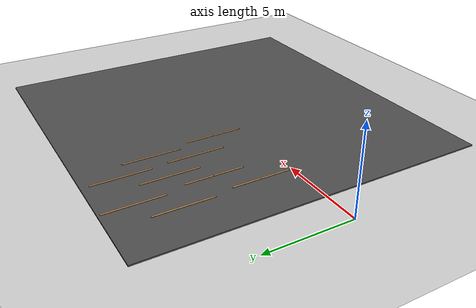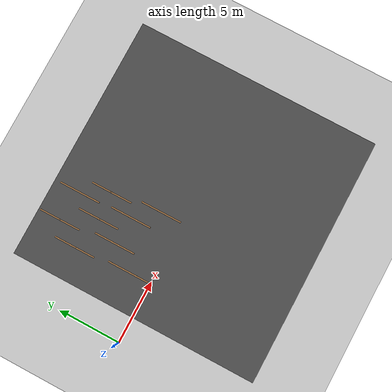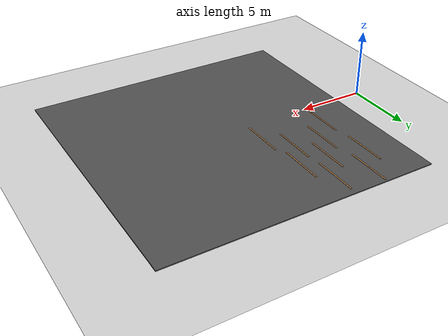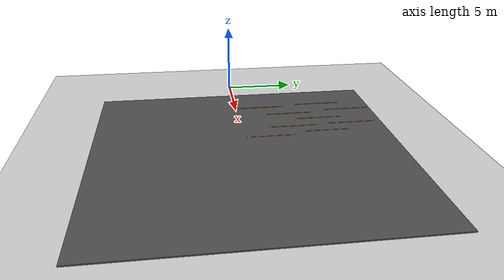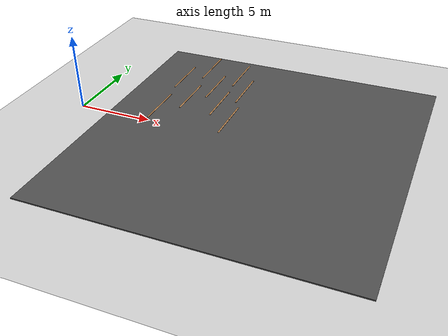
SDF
<sdf version="1.7">
 <world name="default">
  <model name="ground_plane">
   <static>1</static>
   <link name="link">
    <collision name="collision">
     <geometry><plane><normal>0 0 1</normal><size>100 100</size></plane></geometry>
     <surface><friction><ode><mu>100</mu><mu2>50</mu2></ode></friction></surface>
    </collision>
    <visual name="visual">
     <cast_shadows>0</cast_shadows>
     <geometry><plane><normal>0 0 1</normal><size>100 100</size></plane></geometry>
     <material>
      <script><uri>file://media/materials/scripts/gazebo.material</uri><name>Gazebo/Grey</name></script>
     </material>
    </visual>
   </link>
  </model>
  <model name="asphalt_plane">
   <static>1</static>
   <link name="link">
    <collision name="collision"><geometry><box><size>20 20 0.1</size></box></geometry></collision>
    <visual name="visual">
     <cast_shadows>0</cast_shadows>
     <geometry><box><size>20 20 0.1</size></box></geometry>
     <material>
      <script>
       <uri>model://asphalt_plane/materials/scripts</uri>
       <uri>model://asphalt_plane/materials/textures</uri>
       <name>vrc/asphalt</name>
      </script>
     </material>
    </visual>
   </link>
   <pose>12.0553 0.030976 0 0 -0 0</pose>
  </model>
  <model name="wooden_board4_0">
   <link name="base">
    <pose>-0 -0 0.00523 0 -0 0</pose>
    <inertial>
     <mass>0.2765</mass>
     <inertia>
      <ixx>0.0025148</ixx>
      <ixy>0</ixy>
      <ixz>0</ixz>
      <iyy>0.00024037</iyy>
      <iyz>0</iyz>
      <izz>0.00275013</izz>
     </inertia>
    </inertial>
    <visual name="visual">
     <geometry><box><size>0.1016 3.3302 0.02046</size></box></geometry>
     <material>
      <script><uri>file://media/materials/scripts/gazebo.material</uri><name>Gazebo/Wood</name></script>
      <shader type="pixel"><normal_map>__default__</normal_map></shader>
      <ambient>1 1 1 1</ambient>
      <diffuse>1 1 1 1</diffuse>
      <specular>0.2 0.2 0.2 1</specular>
      <emissive>0 0 0 1</emissive>
     </material>
    </visual>
    <visual name="tee_nut_1">
     <pose>0 -0.116 0 0 -0 0</pose>
     <geometry><cylinder><radius>0.00635</radius><length>0.020565</length></cylinder></geometry>
     <material>
      <script><uri>file://media/materials/scripts/gazebo.material</uri><name>Gazebo/Grey</name></script>
      <shader type="pixel"><normal_map>__default__</normal_map></shader>
      <ambient>0.3 0.3 0.3 1</ambient>
      <diffuse>0.7 0.7 0.7 1</diffuse>
      <specular>0.01 0.01 0.01 1</specular>
      <emissive>0 0 0 1</emissive>
     </material>
    </visual>
    <visual name="tee_nut_3">
     <pose>0 0.038 0 0 -0 0</pose>
     <geometry><cylinder><radius>0.00635</radius><length>0.020565</length></cylinder></geometry>
     <material>
      <script><uri>file://media/materials/scripts/gazebo.material</uri><name>Gazebo/Grey</name></script>
      <shader type="pixel"><normal_map>__default__</normal_map></shader>
      <ambient>0.3 0.3 0.3 1</ambient>
      <diffuse>0.7 0.7 0.7 1</diffuse>
      <specular>0.01 0.01 0.01 1</specular>
      <emissive>0 0 0 1</emissive>
     </material>
    </visual>
    <visual name="tee_nut_2">
     <pose>0 -0.038 0 0 -0 0</pose>
     <geometry><cylinder><radius>0.00635</radius><length>0.020565</length></cylinder></geometry>
     <material>
      <script><uri>file://media/materials/scripts/gazebo.material</uri><name>Gazebo/Grey</name></script>
      <shader type="pixel"><normal_map>__default__</normal_map></shader>
      <ambient>0.3 0.3 0.3 1</ambient>
      <diffuse>0.7 0.7 0.7 1</diffuse>
      <specular>0.01 0.01 0.01 1</specular>
      <emissive>0 0 0 1</emissive>
     </material>
    </visual>
    <visual name="tee_nut_4">
     <pose>0 0.116 0 0 -0 0</pose>
     <geometry><cylinder><radius>0.00635</radius><length>0.020565</length></cylinder></geometry>
     <material>
      <script><uri>file://media/materials/scripts/gazebo.material</uri><name>Gazebo/Grey</name></script>
      <shader type="pixel"><normal_map>__default__</normal_map></shader>
      <ambient>0.3 0.3 0.3 1</ambient>
      <diffuse>0.7 0.7 0.7 1</diffuse>
      <specular>0.01 0.01 0.01 1</specular>
      <emissive>0 0 0 1</emissive>
     </material>
    </visual>
    <collision name="collision">
     <geometry><box><size>0.1016 0.3302 0.04046</size></box></geometry>
     <surface>
      <friction>
       <ode><mu>1</mu><mu2>1</mu2><fdir1>0 0 0</fdir1><slip1>0</slip1><slip2>0</slip2></ode>
       <torsional>
        <coefficient>1</coefficient>
        <patch_radius>0</patch_radius>
        <surface_radius>0.01</surface_radius>
        <use_patch_radius>0</use_patch_radius>
        <ode><slip>0</slip></ode>
       </torsional>
      </friction>
      <bounce><restitution_coefficient>0</restitution_coefficient><threshold>1e+06</threshold></bounce>
      <contact>
       <collide_without_contact>0</collide_without_contact>
       <collide_without_contact_bitmask>1</collide_without_contact_bitmask>
       <collide_bitmask>1</collide_bitmask>
       <ode>
        <soft_cfm>0</soft_cfm>
        <soft_erp>0.2</soft_erp>
        <kp>100000</kp>
        <kd>100</kd>
        <max_vel>100</max_vel>
        <min_depth>0.001</min_depth>
       </ode>
       <bullet>
        <split_impulse>1</split_impulse>
        <split_impulse_penetration_threshold>-0.01</split_impulse_penetration_threshold>
        <soft_cfm>0</soft_cfm>
        <soft_erp>0.2</soft_erp>
        <kp>100000</kp>
        <kd>100</kd>
       </bullet>
      </contact>
     </surface>
    </collision>
   </link>
   <static>0</static>
   <pose>4.83829 1.88469 0.063993 0 -0 2.5e-05</pose>
  </model>
  <model name="wooden_board4_2">
   <link name="base">
    <pose>-0 -0 0.00523 0 -0 0</pose>
    <inertial>
     <mass>0.2765</mass>
     <inertia>
      <ixx>0.0025148</ixx>
      <ixy>0</ixy>
      <ixz>0</ixz>
      <iyy>0.00024037</iyy>
      <iyz>0</iyz>
      <izz>0.00275013</izz>
     </inertia>
    </inertial>
    <visual name="visual">
     <geometry><box><size>0.1016 3.3302 0.02046</size></box></geometry>
     <material>
      <script><uri>file://media/materials/scripts/gazebo.material</uri><name>Gazebo/Wood</name></script>
      <shader type="pixel"><normal_map>__default__</normal_map></shader>
      <ambient>1 1 1 1</ambient>
      <diffuse>1 1 1 1</diffuse>
      <specular>0.2 0.2 0.2 1</specular>
      <emissive>0 0 0 1</emissive>
     </material>
    </visual>
    <visual name="tee_nut_1">
     <pose>0 -0.116 0 0 -0 0</pose>
     <geometry><cylinder><radius>0.00635</radius><length>0.020565</length></cylinder></geometry>
     <material>
      <script><uri>file://media/materials/scripts/gazebo.material</uri><name>Gazebo/Grey</name></script>
      <shader type="pixel"><normal_map>__default__</normal_map></shader>
      <ambient>0.3 0.3 0.3 1</ambient>
      <diffuse>0.7 0.7 0.7 1</diffuse>
      <specular>0.01 0.01 0.01 1</specular>
      <emissive>0 0 0 1</emissive>
     </material>
    </visual>
    <visual name="tee_nut_3">
     <pose>0 0.038 0 0 -0 0</pose>
     <geometry><cylinder><radius>0.00635</radius><length>0.020565</length></cylinder></geometry>
     <material>
      <script><uri>file://media/materials/scripts/gazebo.material</uri><name>Gazebo/Grey</name></script>
      <shader type="pixel"><normal_map>__default__</normal_map></shader>
      <ambient>0.3 0.3 0.3 1</ambient>
      <diffuse>0.7 0.7 0.7 1</diffuse>
      <specular>0.01 0.01 0.01 1</specular>
      <emissive>0 0 0 1</emissive>
     </material>
    </visual>
    <visual name="tee_nut_2">
     <pose>0 -0.038 0 0 -0 0</pose>
     <geometry><cylinder><radius>0.00635</radius><length>0.020565</length></cylinder></geometry>
     <material>
      <script><uri>file://media/materials/scripts/gazebo.material</uri><name>Gazebo/Grey</name></script>
      <shader type="pixel"><normal_map>__default__</normal_map></shader>
      <ambient>0.3 0.3 0.3 1</ambient>
      <diffuse>0.7 0.7 0.7 1</diffuse>
      <specular>0.01 0.01 0.01 1</specular>
      <emissive>0 0 0 1</emissive>
     </material>
    </visual>
    <visual name="tee_nut_4">
     <pose>0 0.116 0 0 -0 0</pose>
     <geometry><cylinder><radius>0.00635</radius><length>0.020565</length></cylinder></geometry>
     <material>
      <script><uri>file://media/materials/scripts/gazebo.material</uri><name>Gazebo/Grey</name></script>
      <shader type="pixel"><normal_map>__default__</normal_map></shader>
      <ambient>0.3 0.3 0.3 1</ambient>
      <diffuse>0.7 0.7 0.7 1</diffuse>
      <specular>0.01 0.01 0.01 1</specular>
      <emissive>0 0 0 1</emissive>
     </material>
    </visual>
    <collision name="collision">
     <geometry><box><size>0.1016 0.3302 0.04046</size></box></geometry>
     <surface>
      <friction>
       <ode><mu>1</mu><mu2>1</mu2><fdir1>0 0 0</fdir1><slip1>0</slip1><slip2>0</slip2></ode>
       <torsional>
        <coefficient>1</coefficient>
        <patch_radius>0</patch_radius>
        <surface_radius>0.01</surface_radius>
        <use_patch_radius>0</use_patch_radius>
        <ode><slip>0</slip></ode>
       </torsional>
      </friction>
      <bounce><restitution_coefficient>0</restitution_coefficient><threshold>1e+06</threshold></bounce>
      <contact>
       <collide_without_contact>0</collide_without_contact>
       <collide_without_contact_bitmask>1</collide_without_contact_bitmask>
       <collide_bitmask>1</collide_bitmask>
       <ode>
        <soft_cfm>0</soft_cfm>
        <soft_erp>0.2</soft_erp>
        <kp>100000</kp>
        <kd>100</kd>
        <max_vel>100</max_vel>
        <min_depth>0.001</min_depth>
       </ode>
       <bullet>
        <split_impulse>1</split_impulse>
        <split_impulse_penetration_threshold>-0.01</split_impulse_penetration_threshold>
        <soft_cfm>0</soft_cfm>
        <soft_erp>0.2</soft_erp>
        <kp>100000</kp>
        <kd>100</kd>
       </bullet>
      </contact>
     </surface>
    </collision>
   </link>
   <static>0</static>
   <pose>4.57081 6.26673 0.063993 0 -0 2.5e-05</pose>
  </model>
  <model name="wooden_board4_3">
   <link name="base">
    <pose>-0 -0 0.00523 0 -0 0</pose>
    <inertial>
     <mass>0.2765</mass>
     <inertia>
      <ixx>0.0025148</ixx>
      <ixy>0</ixy>
      <ixz>0</ixz>
      <iyy>0.00024037</iyy>
      <iyz>0</iyz>
      <izz>0.00275013</izz>
     </inertia>
    </inertial>
    <visual name="visual">
     <geometry><box><size>0.1016 3.3302 0.02046</size></box></geometry>
     <material>
      <script><uri>file://media/materials/scripts/gazebo.material</uri><name>Gazebo/Wood</name></script>
      <shader type="pixel"><normal_map>__default__</normal_map></shader>
      <ambient>1 1 1 1</ambient>
      <diffuse>1 1 1 1</diffuse>
      <specular>0.2 0.2 0.2 1</specular>
      <emissive>0 0 0 1</emissive>
     </material>
    </visual>
    <visual name="tee_nut_1">
     <pose>0 -0.116 0 0 -0 0</pose>
     <geometry><cylinder><radius>0.00635</radius><length>0.020565</length></cylinder></geometry>
     <material>
      <script><uri>file://media/materials/scripts/gazebo.material</uri><name>Gazebo/Grey</name></script>
      <shader type="pixel"><normal_map>__default__</normal_map></shader>
      <ambient>0.3 0.3 0.3 1</ambient>
      <diffuse>0.7 0.7 0.7 1</diffuse>
      <specular>0.01 0.01 0.01 1</specular>
      <emissive>0 0 0 1</emissive>
     </material>
    </visual>
    <visual name="tee_nut_3">
     <pose>0 0.038 0 0 -0 0</pose>
     <geometry><cylinder><radius>0.00635</radius><length>0.020565</length></cylinder></geometry>
     <material>
      <script><uri>file://media/materials/scripts/gazebo.material</uri><name>Gazebo/Grey</name></script>
      <shader type="pixel"><normal_map>__default__</normal_map></shader>
      <ambient>0.3 0.3 0.3 1</ambient>
      <diffuse>0.7 0.7 0.7 1</diffuse>
      <specular>0.01 0.01 0.01 1</specular>
      <emissive>0 0 0 1</emissive>
     </material>
    </visual>
    <visual name="tee_nut_2">
     <pose>0 -0.038 0 0 -0 0</pose>
     <geometry><cylinder><radius>0.00635</radius><length>0.020565</length></cylinder></geometry>
     <material>
      <script><uri>file://media/materials/scripts/gazebo.material</uri><name>Gazebo/Grey</name></script>
      <shader type="pixel"><normal_map>__default__</normal_map></shader>
      <ambient>0.3 0.3 0.3 1</ambient>
      <diffuse>0.7 0.7 0.7 1</diffuse>
      <specular>0.01 0.01 0.01 1</specular>
      <emissive>0 0 0 1</emissive>
     </material>
    </visual>
    <visual name="tee_nut_4">
     <pose>0 0.116 0 0 -0 0</pose>
     <geometry><cylinder><radius>0.00635</radius><length>0.020565</length></cylinder></geometry>
     <material>
      <script><uri>file://media/materials/scripts/gazebo.material</uri><name>Gazebo/Grey</name></script>
      <shader type="pixel"><normal_map>__default__</normal_map></shader>
      <ambient>0.3 0.3 0.3 1</ambient>
      <diffuse>0.7 0.7 0.7 1</diffuse>
      <specular>0.01 0.01 0.01 1</specular>
      <emissive>0 0 0 1</emissive>
     </material>
    </visual>
    <collision name="collision">
     <geometry><box><size>0.1016 0.3302 0.04046</size></box></geometry>
     <surface>
      <friction>
       <ode><mu>1</mu><mu2>1</mu2><fdir1>0 0 0</fdir1><slip1>0</slip1><slip2>0</slip2></ode>
       <torsional>
        <coefficient>1</coefficient>
        <patch_radius>0</patch_radius>
        <surface_radius>0.01</surface_radius>
        <use_patch_radius>0</use_patch_radius>
        <ode><slip>0</slip></ode>
       </torsional>
      </friction>
      <bounce><restitution_coefficient>0</restitution_coefficient><threshold>1e+06</threshold></bounce>
      <contact>
       <collide_without_contact>0</collide_without_contact>
       <collide_without_contact_bitmask>1</collide_without_contact_bitmask>
       <collide_bitmask>1</collide_bitmask>
       <ode>
        <soft_cfm>0</soft_cfm>
        <soft_erp>0.2</soft_erp>
        <kp>100000</kp>
        <kd>100</kd>
        <max_vel>100</max_vel>
        <min_depth>0.001</min_depth>
       </ode>
       <bullet>
        <split_impulse>1</split_impulse>
        <split_impulse_penetration_threshold>-0.01</split_impulse_penetration_threshold>
        <soft_cfm>0</soft_cfm>
        <soft_erp>0.2</soft_erp>
        <kp>100000</kp>
        <kd>100</kd>
       </bullet>
      </contact>
     </surface>
    </collision>
   </link>
   <static>0</static>
   <pose>6.21764 3.78263 0.063993 0 -0 2.5e-05</pose>
  </model>
  <model name="wooden_board4_7">
   <link name="base">
    <pose>-0 -0 0.00523 0 -0 0</pose>
    <inertial>
     <mass>0.2765</mass>
     <inertia>
      <ixx>0.0025148</ixx>
      <ixy>0</ixy>
      <ixz>0</ixz>
      <iyy>0.00024037</iyy>
      <iyz>0</iyz>
      <izz>0.00275013</izz>
     </inertia>
    </inertial>
    <visual name="visual">
     <geometry><box><size>0.1016 3.3302 0.02046</size></box></geometry>
     <material>
      <script><uri>file://media/materials/scripts/gazebo.material</uri><name>Gazebo/Wood</name></script>
      <shader type="pixel"><normal_map>__default__</normal_map></shader>
      <ambient>1 1 1 1</ambient>
      <diffuse>1 1 1 1</diffuse>
      <specular>0.2 0.2 0.2 1</specular>
      <emissive>0 0 0 1</emissive>
     </material>
    </visual>
    <visual name="tee_nut_1">
     <pose>0 -0.116 0 0 -0 0</pose>
     <geometry><cylinder><radius>0.00635</radius><length>0.020565</length></cylinder></geometry>
     <material>
      <script><uri>file://media/materials/scripts/gazebo.material</uri><name>Gazebo/Grey</name></script>
      <shader type="pixel"><normal_map>__default__</normal_map></shader>
      <ambient>0.3 0.3 0.3 1</ambient>
      <diffuse>0.7 0.7 0.7 1</diffuse>
      <specular>0.01 0.01 0.01 1</specular>
      <emissive>0 0 0 1</emissive>
     </material>
    </visual>
    <visual name="tee_nut_3">
     <pose>0 0.038 0 0 -0 0</pose>
     <geometry><cylinder><radius>0.00635</radius><length>0.020565</length></cylinder></geometry>
     <material>
      <script><uri>file://media/materials/scripts/gazebo.material</uri><name>Gazebo/Grey</name></script>
      <shader type="pixel"><normal_map>__default__</normal_map></shader>
      <ambient>0.3 0.3 0.3 1</ambient>
      <diffuse>0.7 0.7 0.7 1</diffuse>
      <specular>0.01 0.01 0.01 1</specular>
      <emissive>0 0 0 1</emissive>
     </material>
    </visual>
    <visual name="tee_nut_2">
     <pose>0 -0.038 0 0 -0 0</pose>
     <geometry><cylinder><radius>0.00635</radius><length>0.020565</length></cylinder></geometry>
     <material>
      <script><uri>file://media/materials/scripts/gazebo.material</uri><name>Gazebo/Grey</name></script>
      <shader type="pixel"><normal_map>__default__</normal_map></shader>
      <ambient>0.3 0.3 0.3 1</ambient>
      <diffuse>0.7 0.7 0.7 1</diffuse>
      <specular>0.01 0.01 0.01 1</specular>
      <emissive>0 0 0 1</emissive>
     </material>
    </visual>
    <visual name="tee_nut_4">
     <pose>0 0.116 0 0 -0 0</pose>
     <geometry><cylinder><radius>0.00635</radius><length>0.020565</length></cylinder></geometry>
     <material>
      <script><uri>file://media/materials/scripts/gazebo.material</uri><name>Gazebo/Grey</name></script>
      <shader type="pixel"><normal_map>__default__</normal_map></shader>
      <ambient>0.3 0.3 0.3 1</ambient>
      <diffuse>0.7 0.7 0.7 1</diffuse>
      <specular>0.01 0.01 0.01 1</specular>
      <emissive>0 0 0 1</emissive>
     </material>
    </visual>
    <collision name="collision">
     <geometry><box><size>0.1016 0.3302 0.04046</size></box></geometry>
     <surface>
      <friction>
       <ode><mu>1</mu><mu2>1</mu2><fdir1>0 0 0</fdir1><slip1>0</slip1><slip2>0</slip2></ode>
       <torsional>
        <coefficient>1</coefficient>
        <patch_radius>0</patch_radius>
        <surface_radius>0.01</surface_radius>
        <use_patch_radius>0</use_patch_radius>
        <ode><slip>0</slip></ode>
       </torsional>
      </friction>
      <bounce><restitution_coefficient>0</restitution_coefficient><threshold>1e+06</threshold></bounce>
      <contact>
       <collide_without_contact>0</collide_without_contact>
       <collide_without_contact_bitmask>1</collide_without_contact_bitmask>
       <collide_bitmask>1</collide_bitmask>
       <ode>
        <soft_cfm>0</soft_cfm>
        <soft_erp>0.2</soft_erp>
        <kp>100000</kp>
        <kd>100</kd>
        <max_vel>100</max_vel>
        <min_depth>0.001</min_depth>
       </ode>
       <bullet>
        <split_impulse>1</split_impulse>
        <split_impulse_penetration_threshold>-0.01</split_impulse_penetration_threshold>
        <soft_cfm>0</soft_cfm>
        <soft_erp>0.2</soft_erp>
        <kp>100000</kp>
        <kd>100</kd>
       </bullet>
      </contact>
     </surface>
    </collision>
   </link>
   <static>0</static>
   <pose>7.26014 5.72105 0.063993 0 -0 2.5e-05</pose>
  </model>
  <model name="wooden_board4_9">
   <link name="base">
    <pose>-0 -0 0.00523 0 -0 0</pose>
    <inertial>
     <mass>0.2765</mass>
     <inertia>
      <ixx>0.0025148</ixx>
      <ixy>0</ixy>
      <ixz>0</ixz>
      <iyy>0.00024037</iyy>
      <iyz>0</iyz>
      <izz>0.00275013</izz>
     </inertia>
    </inertial>
    <visual name="visual">
     <geometry><box><size>0.1016 3.3302 0.02046</size></box></geometry>
     <material>
      <script><uri>file://media/materials/scripts/gazebo.material</uri><name>Gazebo/Wood</name></script>
      <shader type="pixel"><normal_map>__default__</normal_map></shader>
      <ambient>1 1 1 1</ambient>
      <diffuse>1 1 1 1</diffuse>
      <specular>0.2 0.2 0.2 1</specular>
      <emissive>0 0 0 1</emissive>
     </material>
    </visual>
    <visual name="tee_nut_1">
     <pose>0 -0.116 0 0 -0 0</pose>
     <geometry><cylinder><radius>0.00635</radius><length>0.020565</length></cylinder></geometry>
     <material>
      <script><uri>file://media/materials/scripts/gazebo.material</uri><name>Gazebo/Grey</name></script>
      <shader type="pixel"><normal_map>__default__</normal_map></shader>
      <ambient>0.3 0.3 0.3 1</ambient>
      <diffuse>0.7 0.7 0.7 1</diffuse>
      <specular>0.01 0.01 0.01 1</specular>
      <emissive>0 0 0 1</emissive>
     </material>
    </visual>
    <visual name="tee_nut_3">
     <pose>0 0.038 0 0 -0 0</pose>
     <geometry><cylinder><radius>0.00635</radius><length>0.020565</length></cylinder></geometry>
     <material>
      <script><uri>file://media/materials/scripts/gazebo.material</uri><name>Gazebo/Grey</name></script>
      <shader type="pixel"><normal_map>__default__</normal_map></shader>
      <ambient>0.3 0.3 0.3 1</ambient>
      <diffuse>0.7 0.7 0.7 1</diffuse>
      <specular>0.01 0.01 0.01 1</specular>
      <emissive>0 0 0 1</emissive>
     </material>
    </visual>
    <visual name="tee_nut_2">
     <pose>0 -0.038 0 0 -0 0</pose>
     <geometry><cylinder><radius>0.00635</radius><length>0.020565</length></cylinder></geometry>
     <material>
      <script><uri>file://media/materials/scripts/gazebo.material</uri><name>Gazebo/Grey</name></script>
      <shader type="pixel"><normal_map>__default__</normal_map></shader>
      <ambient>0.3 0.3 0.3 1</ambient>
      <diffuse>0.7 0.7 0.7 1</diffuse>
      <specular>0.01 0.01 0.01 1</specular>
      <emissive>0 0 0 1</emissive>
     </material>
    </visual>
    <visual name="tee_nut_4">
     <pose>0 0.116 0 0 -0 0</pose>
     <geometry><cylinder><radius>0.00635</radius><length>0.020565</length></cylinder></geometry>
     <material>
      <script><uri>file://media/materials/scripts/gazebo.material</uri><name>Gazebo/Grey</name></script>
      <shader type="pixel"><normal_map>__default__</normal_map></shader>
      <ambient>0.3 0.3 0.3 1</ambient>
      <diffuse>0.7 0.7 0.7 1</diffuse>
      <specular>0.01 0.01 0.01 1</specular>
      <emissive>0 0 0 1</emissive>
     </material>
    </visual>
    <collision name="collision">
     <geometry><box><size>0.1016 0.3302 0.04046</size></box></geometry>
     <surface>
      <friction>
       <ode><mu>1</mu><mu2>1</mu2><fdir1>0 0 0</fdir1><slip1>0</slip1><slip2>0</slip2></ode>
       <torsional>
        <coefficient>1</coefficient>
        <patch_radius>0</patch_radius>
        <surface_radius>0.01</surface_radius>
        <use_patch_radius>0</use_patch_radius>
        <ode><slip>0</slip></ode>
       </torsional>
      </friction>
      <bounce><restitution_coefficient>0</restitution_coefficient><threshold>1e+06</threshold></bounce>
      <contact>
       <collide_without_contact>0</collide_without_contact>
       <collide_without_contact_bitmask>1</collide_without_contact_bitmask>
       <collide_bitmask>1</collide_bitmask>
       <ode>
        <soft_cfm>0</soft_cfm>
        <soft_erp>0.2</soft_erp>
        <kp>100000</kp>
        <kd>100</kd>
        <max_vel>100</max_vel>
        <min_depth>0.001</min_depth>
       </ode>
       <bullet>
        <split_impulse>1</split_impulse>
        <split_impulse_penetration_threshold>-0.01</split_impulse_penetration_threshold>
        <soft_cfm>0</soft_cfm>
        <soft_erp>0.2</soft_erp>
        <kp>100000</kp>
        <kd>100</kd>
       </bullet>
      </contact>
     </surface>
    </collision>
   </link>
   <static>0</static>
   <pose>5.84274 8.23136 0.063993 0 -0 2.5e-05</pose>
  </model>
  <model name="wooden_board4_11">
   <link name="base">
    <pose>-0 -0 0.00523 0 -0 0</pose>
    <inertial>
     <mass>0.2765</mass>
     <inertia>
      <ixx>0.0025148</ixx>
      <ixy>0</ixy>
      <ixz>0</ixz>
      <iyy>0.00024037</iyy>
      <iyz>0</iyz>
      <izz>0.00275013</izz>
     </inertia>
    </inertial>
    <visual name="visual">
     <geometry><box><size>0.1016 3.3302 0.02046</size></box></geometry>
     <material>
      <script><uri>file://media/materials/scripts/gazebo.material</uri><name>Gazebo/Wood</name></script>
      <shader type="pixel"><normal_map>__default__</normal_map></shader>
      <ambient>1 1 1 1</ambient>
      <diffuse>1 1 1 1</diffuse>
      <specular>0.2 0.2 0.2 1</specular>
      <emissive>0 0 0 1</emissive>
     </material>
    </visual>
    <visual name="tee_nut_1">
     <pose>0 -0.116 0 0 -0 0</pose>
     <geometry><cylinder><radius>0.00635</radius><length>0.020565</length></cylinder></geometry>
     <material>
      <script><uri>file://media/materials/scripts/gazebo.material</uri><name>Gazebo/Grey</name></script>
      <shader type="pixel"><normal_map>__default__</normal_map></shader>
      <ambient>0.3 0.3 0.3 1</ambient>
      <diffuse>0.7 0.7 0.7 1</diffuse>
      <specular>0.01 0.01 0.01 1</specular>
      <emissive>0 0 0 1</emissive>
     </material>
    </visual>
    <visual name="tee_nut_3">
     <pose>0 0.038 0 0 -0 0</pose>
     <geometry><cylinder><radius>0.00635</radius><length>0.020565</length></cylinder></geometry>
     <material>
      <script><uri>file://media/materials/scripts/gazebo.material</uri><name>Gazebo/Grey</name></script>
      <shader type="pixel"><normal_map>__default__</normal_map></shader>
      <ambient>0.3 0.3 0.3 1</ambient>
      <diffuse>0.7 0.7 0.7 1</diffuse>
      <specular>0.01 0.01 0.01 1</specular>
      <emissive>0 0 0 1</emissive>
     </material>
    </visual>
    <visual name="tee_nut_2">
     <pose>0 -0.038 0 0 -0 0</pose>
     <geometry><cylinder><radius>0.00635</radius><length>0.020565</length></cylinder></geometry>
     <material>
      <script><uri>file://media/materials/scripts/gazebo.material</uri><name>Gazebo/Grey</name></script>
      <shader type="pixel"><normal_map>__default__</normal_map></shader>
      <ambient>0.3 0.3 0.3 1</ambient>
      <diffuse>0.7 0.7 0.7 1</diffuse>
      <specular>0.01 0.01 0.01 1</specular>
      <emissive>0 0 0 1</emissive>
     </material>
    </visual>
    <visual name="tee_nut_4">
     <pose>0 0.116 0 0 -0 0</pose>
     <geometry><cylinder><radius>0.00635</radius><length>0.020565</length></cylinder></geometry>
     <material>
      <script><uri>file://media/materials/scripts/gazebo.material</uri><name>Gazebo/Grey</name></script>
      <shader type="pixel"><normal_map>__default__</normal_map></shader>
      <ambient>0.3 0.3 0.3 1</ambient>
      <diffuse>0.7 0.7 0.7 1</diffuse>
      <specular>0.01 0.01 0.01 1</specular>
      <emissive>0 0 0 1</emissive>
     </material>
    </visual>
    <collision name="collision">
     <geometry><box><size>0.1016 0.3302 0.04046</size></box></geometry>
     <surface>
      <friction>
       <ode><mu>1</mu><mu2>1</mu2><fdir1>0 0 0</fdir1><slip1>0</slip1><slip2>0</slip2></ode>
       <torsional>
        <coefficient>1</coefficient>
        <patch_radius>0</patch_radius>
        <surface_radius>0.01</surface_radius>
        <use_patch_radius>0</use_patch_radius>
        <ode><slip>0</slip></ode>
       </torsional>
      </friction>
      <bounce><restitution_coefficient>0</restitution_coefficient><threshold>1e+06</threshold></bounce>
      <contact>
       <collide_without_contact>0</collide_without_contact>
       <collide_without_contact_bitmask>1</collide_without_contact_bitmask>
       <collide_bitmask>1</collide_bitmask>
       <ode>
        <soft_cfm>0</soft_cfm>
        <soft_erp>0.2</soft_erp>
        <kp>100000</kp>
        <kd>100</kd>
        <max_vel>100</max_vel>
        <min_depth>0.001</min_depth>
       </ode>
       <bullet>
        <split_impulse>1</split_impulse>
        <split_impulse_penetration_threshold>-0.01</split_impulse_penetration_threshold>
        <soft_cfm>0</soft_cfm>
        <soft_erp>0.2</soft_erp>
        <kp>100000</kp>
        <kd>100</kd>
       </bullet>
      </contact>
     </surface>
    </collision>
   </link>
   <static>0</static>
   <pose>8.48134 3.65273 0.063993 0 -0 2.5e-05</pose>
  </model>
  <model name="wooden_board4_12">
   <link name="base">
    <pose>-0 -0 0.00523 0 -0 0</pose>
    <inertial>
     <mass>0.2765</mass>
     <inertia>
      <ixx>0.0025148</ixx>
      <ixy>0</ixy>
      <ixz>0</ixz>
      <iyy>0.00024037</iyy>
      <iyz>0</iyz>
      <izz>0.00275013</izz>
     </inertia>
    </inertial>
    <visual name="visual">
     <geometry><box><size>0.1016 3.3302 0.02046</size></box></geometry>
     <material>
      <script><uri>file://media/materials/scripts/gazebo.material</uri><name>Gazebo/Wood</name></script>
      <shader type="pixel"><normal_map>__default__</normal_map></shader>
      <ambient>1 1 1 1</ambient>
      <diffuse>1 1 1 1</diffuse>
      <specular>0.2 0.2 0.2 1</specular>
      <emissive>0 0 0 1</emissive>
     </material>
    </visual>
    <visual name="tee_nut_1">
     <pose>0 -0.116 0 0 -0 0</pose>
     <geometry><cylinder><radius>0.00635</radius><length>0.020565</length></cylinder></geometry>
     <material>
      <script><uri>file://media/materials/scripts/gazebo.material</uri><name>Gazebo/Grey</name></script>
      <shader type="pixel"><normal_map>__default__</normal_map></shader>
      <ambient>0.3 0.3 0.3 1</ambient>
      <diffuse>0.7 0.7 0.7 1</diffuse>
      <specular>0.01 0.01 0.01 1</specular>
      <emissive>0 0 0 1</emissive>
     </material>
    </visual>
    <visual name="tee_nut_3">
     <pose>0 0.038 0 0 -0 0</pose>
     <geometry><cylinder><radius>0.00635</radius><length>0.020565</length></cylinder></geometry>
     <material>
      <script><uri>file://media/materials/scripts/gazebo.material</uri><name>Gazebo/Grey</name></script>
      <shader type="pixel"><normal_map>__default__</normal_map></shader>
      <ambient>0.3 0.3 0.3 1</ambient>
      <diffuse>0.7 0.7 0.7 1</diffuse>
      <specular>0.01 0.01 0.01 1</specular>
      <emissive>0 0 0 1</emissive>
     </material>
    </visual>
    <visual name="tee_nut_2">
     <pose>0 -0.038 0 0 -0 0</pose>
     <geometry><cylinder><radius>0.00635</radius><length>0.020565</length></cylinder></geometry>
     <material>
      <script><uri>file://media/materials/scripts/gazebo.material</uri><name>Gazebo/Grey</name></script>
      <shader type="pixel"><normal_map>__default__</normal_map></shader>
      <ambient>0.3 0.3 0.3 1</ambient>
      <diffuse>0.7 0.7 0.7 1</diffuse>
      <specular>0.01 0.01 0.01 1</specular>
      <emissive>0 0 0 1</emissive>
     </material>
    </visual>
    <visual name="tee_nut_4">
     <pose>0 0.116 0 0 -0 0</pose>
     <geometry><cylinder><radius>0.00635</radius><length>0.020565</length></cylinder></geometry>
     <material>
      <script><uri>file://media/materials/scripts/gazebo.material</uri><name>Gazebo/Grey</name></script>
      <shader type="pixel"><normal_map>__default__</normal_map></shader>
      <ambient>0.3 0.3 0.3 1</ambient>
      <diffuse>0.7 0.7 0.7 1</diffuse>
      <specular>0.01 0.01 0.01 1</specular>
      <emissive>0 0 0 1</emissive>
     </material>
    </visual>
    <collision name="collision">
     <geometry><box><size>0.1016 0.3302 0.04046</size></box></geometry>
     <surface>
      <friction>
       <ode><mu>1</mu><mu2>1</mu2><fdir1>0 0 0</fdir1><slip1>0</slip1><slip2>0</slip2></ode>
       <torsional>
        <coefficient>1</coefficient>
        <patch_radius>0</patch_radius>
        <surface_radius>0.01</surface_radius>
        <use_patch_radius>0</use_patch_radius>
        <ode><slip>0</slip></ode>
       </torsional>
      </friction>
      <bounce><restitution_coefficient>0</restitution_coefficient><threshold>1e+06</threshold></bounce>
      <contact>
       <collide_without_contact>0</collide_without_contact>
       <collide_without_contact_bitmask>1</collide_without_contact_bitmask>
       <collide_bitmask>1</collide_bitmask>
       <ode>
        <soft_cfm>0</soft_cfm>
        <soft_erp>0.2</soft_erp>
        <kp>100000</kp>
        <kd>100</kd>
        <max_vel>100</max_vel>
        <min_depth>0.001</min_depth>
       </ode>
       <bullet>
        <split_impulse>1</split_impulse>
        <split_impulse_penetration_threshold>-0.01</split_impulse_penetration_threshold>
        <soft_cfm>0</soft_cfm>
        <soft_erp>0.2</soft_erp>
        <kp>100000</kp>
        <kd>100</kd>
       </bullet>
      </contact>
     </surface>
    </collision>
   </link>
   <static>0</static>
   <pose>8.33495 7.9082 0.063993 0 -0 2.5e-05</pose>
  </model>
  <model name="wooden_board4_14">
   <link name="base">
    <pose>-0 -0 0.00523 0 -0 0</pose>
    <inertial>
     <mass>0.2765</mass>
     <inertia>
      <ixx>0.0025148</ixx>
      <ixy>0</ixy>
      <ixz>0</ixz>
      <iyy>0.00024037</iyy>
      <iyz>0</iyz>
      <izz>0.00275013</izz>
     </inertia>
    </inertial>
    <visual name="visual">
     <geometry><box><size>0.1016 3.3302 0.02046</size></box></geometry>
     <material>
      <script><uri>file://media/materials/scripts/gazebo.material</uri><name>Gazebo/Wood</name></script>
      <shader type="pixel"><normal_map>__default__</normal_map></shader>
      <ambient>1 1 1 1</ambient>
      <diffuse>1 1 1 1</diffuse>
      <specular>0.2 0.2 0.2 1</specular>
      <emissive>0 0 0 1</emissive>
     </material>
    </visual>
    <visual name="tee_nut_1">
     <pose>0 -0.116 0 0 -0 0</pose>
     <geometry><cylinder><radius>0.00635</radius><length>0.020565</length></cylinder></geometry>
     <material>
      <script><uri>file://media/materials/scripts/gazebo.material</uri><name>Gazebo/Grey</name></script>
      <shader type="pixel"><normal_map>__default__</normal_map></shader>
      <ambient>0.3 0.3 0.3 1</ambient>
      <diffuse>0.7 0.7 0.7 1</diffuse>
      <specular>0.01 0.01 0.01 1</specular>
      <emissive>0 0 0 1</emissive>
     </material>
    </visual>
    <visual name="tee_nut_3">
     <pose>0 0.038 0 0 -0 0</pose>
     <geometry><cylinder><radius>0.00635</radius><length>0.020565</length></cylinder></geometry>
     <material>
      <script><uri>file://media/materials/scripts/gazebo.material</uri><name>Gazebo/Grey</name></script>
      <shader type="pixel"><normal_map>__default__</normal_map></shader>
      <ambient>0.3 0.3 0.3 1</ambient>
      <diffuse>0.7 0.7 0.7 1</diffuse>
      <specular>0.01 0.01 0.01 1</specular>
      <emissive>0 0 0 1</emissive>
     </material>
    </visual>
    <visual name="tee_nut_2">
     <pose>0 -0.038 0 0 -0 0</pose>
     <geometry><cylinder><radius>0.00635</radius><length>0.020565</length></cylinder></geometry>
     <material>
      <script><uri>file://media/materials/scripts/gazebo.material</uri><name>Gazebo/Grey</name></script>
      <shader type="pixel"><normal_map>__default__</normal_map></shader>
      <ambient>0.3 0.3 0.3 1</ambient>
      <diffuse>0.7 0.7 0.7 1</diffuse>
      <specular>0.01 0.01 0.01 1</specular>
      <emissive>0 0 0 1</emissive>
     </material>
    </visual>
    <visual name="tee_nut_4">
     <pose>0 0.116 0 0 -0 0</pose>
     <geometry><cylinder><radius>0.00635</radius><length>0.020565</length></cylinder></geometry>
     <material>
      <script><uri>file://media/materials/scripts/gazebo.material</uri><name>Gazebo/Grey</name></script>
      <shader type="pixel"><normal_map>__default__</normal_map></shader>
      <ambient>0.3 0.3 0.3 1</ambient>
      <diffuse>0.7 0.7 0.7 1</diffuse>
      <specular>0.01 0.01 0.01 1</specular>
      <emissive>0 0 0 1</emissive>
     </material>
    </visual>
    <collision name="collision">
     <geometry><box><size>0.1016 0.3302 0.04046</size></box></geometry>
     <surface>
      <friction>
       <ode><mu>1</mu><mu2>1</mu2><fdir1>0 0 0</fdir1><slip1>0</slip1><slip2>0</slip2></ode>
       <torsional>
        <coefficient>1</coefficient>
        <patch_radius>0</patch_radius>
        <surface_radius>0.01</surface_radius>
        <use_patch_radius>0</use_patch_radius>
        <ode><slip>0</slip></ode>
       </torsional>
      </friction>
      <bounce><restitution_coefficient>0</restitution_coefficient><threshold>1e+06</threshold></bounce>
      <contact>
       <collide_without_contact>0</collide_without_contact>
       <collide_without_contact_bitmask>1</collide_without_contact_bitmask>
       <collide_bitmask>1</collide_bitmask>
       <ode>
        <soft_cfm>0</soft_cfm>
        <soft_erp>0.2</soft_erp>
        <kp>100000</kp>
        <kd>100</kd>
        <max_vel>100</max_vel>
        <min_depth>0.001</min_depth>
       </ode>
       <bullet>
        <split_impulse>1</split_impulse>
        <split_impulse_penetration_threshold>-0.01</split_impulse_penetration_threshold>
        <soft_cfm>0</soft_cfm>
        <soft_erp>0.2</soft_erp>
        <kp>100000</kp>
        <kd>100</kd>
       </bullet>
      </contact>
     </surface>
    </collision>
   </link>
   <static>0</static>
   <pose>9.4449 5.79699 0.063993 0 -0 2.5e-05</pose>
  </model>
  <model name="wooden_board4_15">
   <link name="base">
    <pose>-0 -0 0.00523 0 -0 0</pose>
    <inertial>
     <mass>0.2765</mass>
     <inertia>
      <ixx>0.0025148</ixx>
      <ixy>0</ixy>
      <ixz>0</ixz>
      <iyy>0.00024037</iyy>
      <iyz>0</iyz>
      <izz>0.00275013</izz>
     </inertia>
    </inertial>
    <visual name="visual">
     <geometry><box><size>0.1016 3.3302 0.02046</size></box></geometry>
     <material>
      <script><uri>file://media/materials/scripts/gazebo.material</uri><name>Gazebo/Wood</name></script>
      <shader type="pixel"><normal_map>__default__</normal_map></shader>
      <ambient>1 1 1 1</ambient>
      <diffuse>1 1 1 1</diffuse>
      <specular>0.2 0.2 0.2 1</specular>
      <emissive>0 0 0 1</emissive>
     </material>
    </visual>
    <visual name="tee_nut_1">
     <pose>0 -0.116 0 0 -0 0</pose>
     <geometry><cylinder><radius>0.00635</radius><length>0.020565</length></cylinder></geometry>
     <material>
      <script><uri>file://media/materials/scripts/gazebo.material</uri><name>Gazebo/Grey</name></script>
      <shader type="pixel"><normal_map>__default__</normal_map></shader>
      <ambient>0.3 0.3 0.3 1</ambient>
      <diffuse>0.7 0.7 0.7 1</diffuse>
      <specular>0.01 0.01 0.01 1</specular>
      <emissive>0 0 0 1</emissive>
     </material>
    </visual>
    <visual name="tee_nut_3">
     <pose>0 0.038 0 0 -0 0</pose>
     <geometry><cylinder><radius>0.00635</radius><length>0.020565</length></cylinder></geometry>
     <material>
      <script><uri>file://media/materials/scripts/gazebo.material</uri><name>Gazebo/Grey</name></script>
      <shader type="pixel"><normal_map>__default__</normal_map></shader>
      <ambient>0.3 0.3 0.3 1</ambient>
      <diffuse>0.7 0.7 0.7 1</diffuse>
      <specular>0.01 0.01 0.01 1</specular>
      <emissive>0 0 0 1</emissive>
     </material>
    </visual>
    <visual name="tee_nut_2">
     <pose>0 -0.038 0 0 -0 0</pose>
     <geometry><cylinder><radius>0.00635</radius><length>0.020565</length></cylinder></geometry>
     <material>
      <script><uri>file://media/materials/scripts/gazebo.material</uri><name>Gazebo/Grey</name></script>
      <shader type="pixel"><normal_map>__default__</normal_map></shader>
      <ambient>0.3 0.3 0.3 1</ambient>
      <diffuse>0.7 0.7 0.7 1</diffuse>
      <specular>0.01 0.01 0.01 1</specular>
      <emissive>0 0 0 1</emissive>
     </material>
    </visual>
    <visual name="tee_nut_4">
     <pose>0 0.116 0 0 -0 0</pose>
     <geometry><cylinder><radius>0.00635</radius><length>0.020565</length></cylinder></geometry>
     <material>
      <script><uri>file://media/materials/scripts/gazebo.material</uri><name>Gazebo/Grey</name></script>
      <shader type="pixel"><normal_map>__default__</normal_map></shader>
      <ambient>0.3 0.3 0.3 1</ambient>
      <diffuse>0.7 0.7 0.7 1</diffuse>
      <specular>0.01 0.01 0.01 1</specular>
      <emissive>0 0 0 1</emissive>
     </material>
    </visual>
    <collision name="collision">
     <geometry><box><size>0.1016 0.3302 0.04046</size></box></geometry>
     <surface>
      <friction>
       <ode><mu>1</mu><mu2>1</mu2><fdir1>0 0 0</fdir1><slip1>0</slip1><slip2>0</slip2></ode>
       <torsional>
        <coefficient>1</coefficient>
        <patch_radius>0</patch_radius>
        <surface_radius>0.01</surface_radius>
        <use_patch_radius>0</use_patch_radius>
        <ode><slip>0</slip></ode>
       </torsional>
      </friction>
      <bounce><restitution_coefficient>0</restitution_coefficient><threshold>1e+06</threshold></bounce>
      <contact>
       <collide_without_contact>0</collide_without_contact>
       <collide_without_contact_bitmask>1</collide_without_contact_bitmask>
       <collide_bitmask>1</collide_bitmask>
       <ode>
        <soft_cfm>0</soft_cfm>
        <soft_erp>0.2</soft_erp>
        <kp>100000</kp>
        <kd>100</kd>
        <max_vel>100</max_vel>
        <min_depth>0.001</min_depth>
       </ode>
       <bullet>
        <split_impulse>1</split_impulse>
        <split_impulse_penetration_threshold>-0.01</split_impulse_penetration_threshold>
        <soft_cfm>0</soft_cfm>
        <soft_erp>0.2</soft_erp>
        <kp>100000</kp>
        <kd>100</kd>
       </bullet>
      </contact>
     </surface>
    </collision>
   </link>
   <static>0</static>
   <pose>9.89603 1.84063 0.063993 0 -0 2.5e-05</pose>
  </model>
 </world>
</sdf>
